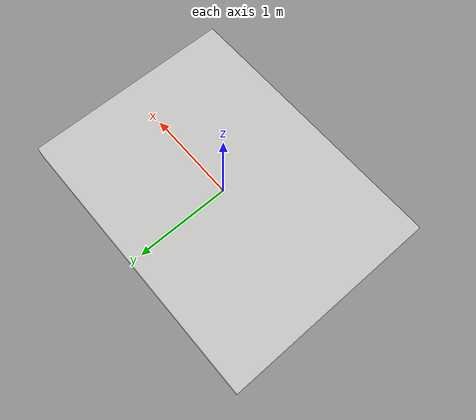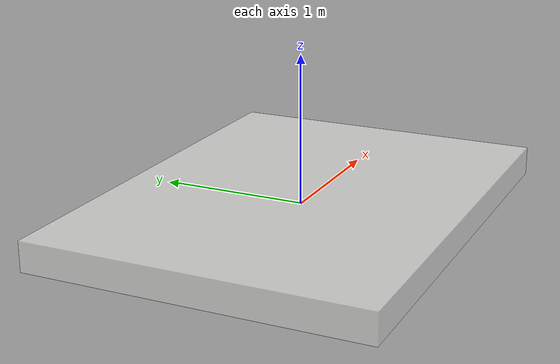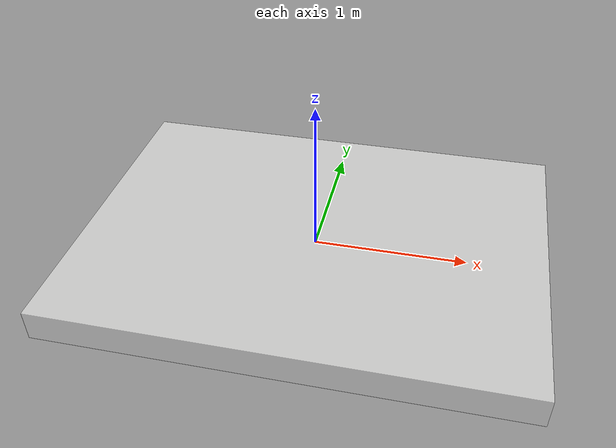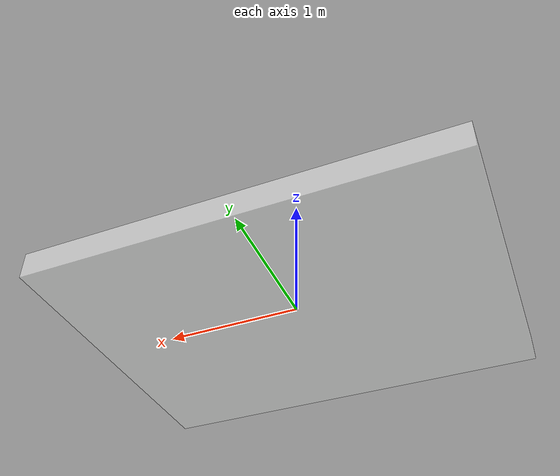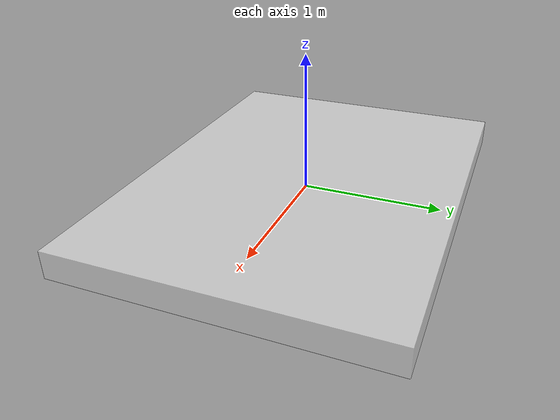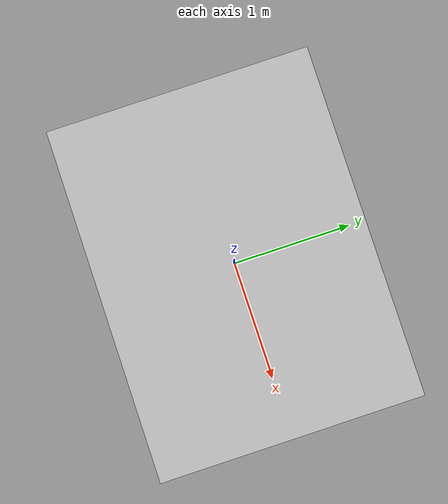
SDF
<?xml version="1.0"?>
<sdf version="1.8">
    <model name="water">
        <static>true</static>
        <link name="water_link">
            <collision name='collision'>
                <pose>0 0 0.04 0 0 0</pose>
                <geometry>
                    <box>
                        <size>0.2 0.01 0.16</size>
                    </box>
                </geometry>
            </collision>

            <visual name='visual'>
                <geometry>
                    <box>
                        <size>3 2.25 0.2</size>
                    </box>
                </geometry>
                <transparency> 0.5 </transparency>
                <material>
                    <ambient>0 0 1 1</ambient>
                    <diffuse>1 1 1 1</diffuse>
                    <specular>0 0.5 0 0</specular>
                    <emissive>0 0 0 1</emissive>
                </material>
            </visual>
        </link>
    </model>
</sdf>
